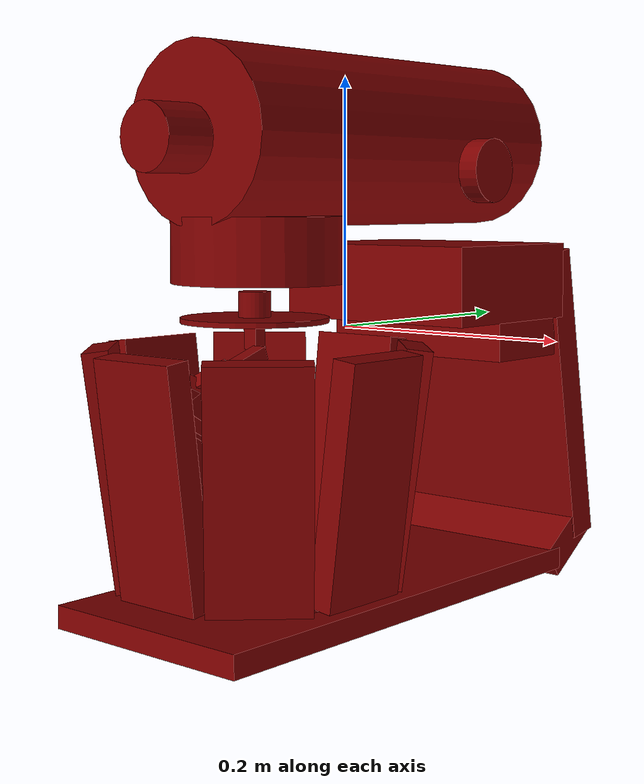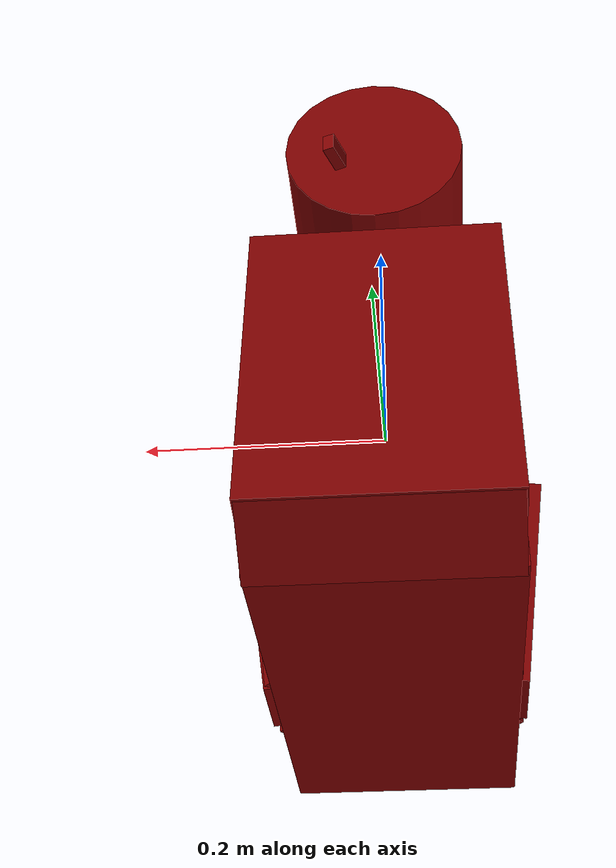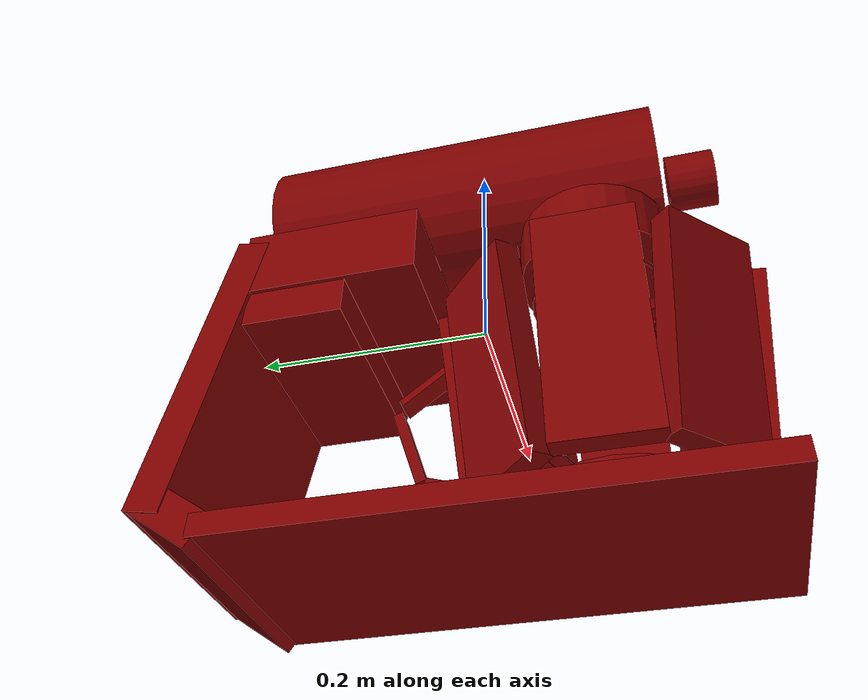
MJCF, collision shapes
<?xml version='1.0' encoding='UTF-8'?>
<mujoco model="model">
  <compiler angle="radian"/>
  <asset>
    <mesh file="visuals/Blender001.obj" name="Blender001_vis"/>
    <mesh file="visuals/Body001.obj" name="Body001_vis"/>
    <mesh file="visuals/Contanier001.obj" name="Contanier001_vis"/>
    <mesh file="visuals/Knob001.obj" name="Knob001_vis"/>
    <mesh file="visuals/Lever001.obj" name="Lever001_vis"/>
    <mesh file="visuals/Lid001.obj" name="Lid001_vis"/>
    <texture file="visuals/T_BC001.png" name="Body001_material" type="2d"/>
    <material name="Body001_material" rgba="1 1 1 1.0" texture="Body001_material" shininess="0.5438126623630524" specular="0.3103448502657381"/>
    <texture file="visuals/T_BC001.png" name="Contanier001_material" type="2d"/>
    <material name="Contanier001_material" rgba="1 1 1 1.0" texture="Contanier001_material" shininess="0.5438126623630524" specular="0.3103448502657381"/>
    <texture file="visuals/T_BC001.png" name="Lid001_material" type="2d"/>
    <material name="Lid001_material" rgba="1 1 1 1.0" texture="Lid001_material" shininess="0.5438126623630524" specular="0.3103448502657381"/>
    <texture file="visuals/T_BC001.png" name="Blender001_material" type="2d"/>
    <material name="Blender001_material" rgba="1 1 1 1.0" texture="Blender001_material" shininess="0.5438126623630524" specular="0.3103448502657381"/>
    <texture file="visuals/T_BC001.png" name="Knob001_material" type="2d"/>
    <material name="Knob001_material" rgba="1 1 1 1.0" texture="Knob001_material" shininess="0.5438126623630524" specular="0.3103448502657381"/>
    <texture file="visuals/T_BC001.png" name="Lever001_material" type="2d"/>
    <material name="Lever001_material" rgba="1 1 1 1.0" texture="Lever001_material" shininess="0.5438126623630524" specular="0.3103448502657381"/>
  </asset>
  <default>
    <default class="visual">
      <geom conaffinity="0" contype="0" group="1" type="mesh"/>
    </default>
    <default class="collision">
      <geom group="0" rgba="0.5 0 0 0.5"/>
    </default>
    <default class="spawn">
      <geom group="0" rgba="1 1 1 0.5" contype="0" conaffinity="0"/>
      <site group="0" rgba="1 1 1 0.5"/>
    </default>
    <default class="region">
      <geom group="1" conaffinity="0" contype="0" rgba="0 1 0 0"/>
    </default>
  </default>
  <worldbody>
    <body>
      <body name="object">
        <geom mesh="Body001_vis" type="mesh" solimp="0.998 0.998 0.001" solref="0.001 1" density="100" friction="0.95 0.3 0.1" class="visual" material="Body001_material"/>
        <geom class="collision" type="box" pos="-0.002943 -0.017992 -0.210796" size="0.09299628436565399 0.20198586583137512 0.009089131839573383" quat="1.0 0.0 0.0 0.0"/>
        <geom class="collision" type="box" pos="-0.002555 0.201024 -0.068752" size="0.0926085039973259 0.014161109924316406 0.12825751304626465" quat="0.9964488744735718 0.08419966697692871 -1.869608509743379e-17 -1.5005967532832152e-24"/>
        <geom class="collision" type="box" pos="-0.002397 0.109999 0.033113" size="0.09245053678750992 0.07399482280015945 0.03192950040102005" quat="1.0 0.0 0.0 0.0"/>
        <geom class="collision" type="box" pos="-0.002555 0.202044 -0.197711" size="0.0914422869682312 0.01416111085563898 0.031224068254232407" quat="0.8828450441360474 -0.4696643650531769 -1.3570199704419878e-16 2.027896302836424e-17"/>
        <geom class="collision" type="box" pos="-0.002555 0.136155 -0.014812" size="0.08866823464632034 0.016375288367271423 0.04129499942064285" quat="0.7071067094802856 0.7071068286895752 2.702663593570636e-17 1.8036265622112902e-16"/>
        <body name="Contanier001">
          <joint axis="0.0 0.0 1.0" pos="0.000000 -0.080116 -0.103911" limited="true" name="Contanier001_joint" range="0.0 0.05" type="slide" damping="1" frictionloss="1" armature=".01" stiffness="0.05"/>
          <geom mesh="Contanier001_vis" type="mesh" solimp="0.998 0.998 0.001" solref="0.001 1" density="100" friction="0.95 0.3 0.1" class="visual" material="Contanier001_material"/>
          <geom class="collision" type="box" pos="0.000004 0.009828 -0.098375" size="0.03837154060602188 0.009942335076630116 0.09084977209568024" quat="0.9979614615440369 -0.06381987035274506 0.0 0.0"/>
          <geom class="collision" type="box" pos="0.000004 -0.209197 -0.098921" size="0.03837154060602188 0.009942335076630116 0.09084977209568024" quat="1.943102603263469e-07 -1.2426191631220718e-08 -0.9979614615440369 -0.06381989270448685"/>
          <geom class="collision" type="box" pos="-0.107747 -0.100689 -0.098824" size="0.03837154060602188 0.009942334145307541 0.09084976464509964" quat="0.04512753337621689 0.7056650519371033 0.7056655883789062 0.04512733966112137"/>
          <geom class="collision" type="box" pos="0.106474 -0.100689 -0.098659" size="0.03837154060602188 0.009942335076630116 0.09084977209568024" quat="0.7056653499603271 -0.04512745514512062 0.04512745514512062 -0.7056652307510376"/>
          <geom class="collision" type="box" pos="0.074206 -0.178602 -0.098804" size="0.03837154060602188 0.009942334145307541 0.09084977209568024" quat="0.3706315755844116 -0.023701976984739304 0.05925530940294266 -0.9265847206115723"/>
          <geom class="collision" type="box" pos="-0.073898 -0.023092 -0.098748" size="0.03837154060602188 0.009942334145307541 0.09084976464509964" quat="0.059255219995975494 0.926584780216217 0.3706314265727997 0.0237021055072546"/>
          <geom class="collision" type="box" pos="0.077917 -0.026488 -0.098804" size="0.03837154060602188 0.009942333213984966 0.09084976464509964" quat="0.058659687638282776 0.9172704219818115 -0.39311835169792175 -0.02513984777033329"/>
          <geom class="collision" type="box" pos="-0.078416 -0.175374 -0.098894" size="0.03837154060602188 0.009942333213984966 0.09084977209568024" quat="0.39311814308166504 -0.02513999119400978 -0.058659665286540985 0.9172704815864563"/>
          <geom class="collision" type="cylinder" pos="0.000004 -0.100943 -0.191818" size="0.07816345244646072 0.005113876890391111" quat="1.0 0.0 0.0 0.0"/>
          <geom class="collision" type="box" pos="-0.001167 0.059543 -0.112412" size="0.009522397071123123 0.003930070903152227 0.034882139414548874" quat="0.9874767065048218 -0.15776482224464417 3.5030827626379805e-17 4.60439887690594e-24"/>
          <geom class="collision" type="box" pos="-0.001167 0.048647 -0.054078" size="0.009522397071123123 0.0031111417338252068 0.02426467090845108" quat="0.8980101346969604 0.4399747848510742 -9.769405374901203e-17 2.2198020491556395e-23"/>
          <geom class="collision" type="box" pos="-0.001167 0.023919 -0.152844" size="0.009522397071123123 0.0036734919995069504 0.022242942824959755" quat="1.5712855372385093e-07 -8.69119531898832e-08 -0.5904467105865479 -0.807076632976532"/>
        </body>
        <body name="Lid001">
          <joint axis="-1.0 0.0 0.0" pos="0.000004 0.172385 0.073544" limited="true" name="Lid001_joint" range="0.0 1.5707963267948966" type="hinge" damping="1" frictionloss="1" armature=".01" stiffness="0.05"/>
          <geom mesh="Lid001_vis" type="mesh" solimp="0.998 0.998 0.001" solref="0.001 1" density="100" friction="0.95 0.3 0.1" class="visual" material="Lid001_material"/>
          <geom class="collision" type="cylinder" pos="0.000004 -0.193128 0.146298" size="0.025266218930482864 0.021115923300385475" quat="0.7071067094802856 -0.70710688829422 0.0 0.0"/>
          <geom class="collision" type="cylinder" pos="0.000004 -0.100290 0.064805" size="0.06663016229867935 0.025263486430048943" quat="1.0 -5.960464477539063e-08 0.0 0.0"/>
          <geom class="collision" type="cylinder" pos="-0.002690 0.010272 0.150069" size="0.0685434490442276 0.17514696717262268" quat="0.7071067094802856 -0.70710688829422 0.0 0.0"/>
          <body name="Blender001">
            <joint axis="0.0 0.0 1.0" pos="-0.005117 -0.099959 0.035286" limited="false" name="Blender001_joint" range="0 360" type="hinge" damping="1" frictionloss="1" armature=".01" stiffness="0.05"/>
            <geom mesh="Blender001_vis" type="mesh" solimp="0.998 0.998 0.001" solref="0.001 1" density="100" friction="0.95 0.3 0.1" class="visual" material="Blender001_material"/>
            <geom class="collision" type="cylinder" pos="-0.004896 -0.100039 0.022623" size="0.012292686849832535 0.010325752198696136" quat="1.0 -5.960464477539063e-08 0.0 0.0"/>
            <geom class="collision" type="cylinder" pos="-0.004896 -0.100039 0.011371" size="0.056904375553131104 0.0020433019381016493" quat="1.0 -5.960464477539063e-08 0.0 0.0"/>
            <geom class="collision" type="box" pos="-0.004519 -0.100647 0.000950" size="0.006084819789975882 0.005328639410436153 0.012103812769055367" quat="1.0 0.0 0.0 0.0"/>
            <geom class="collision" type="box" pos="0.005812 -0.119838 -0.017950" size="0.006084819789975882 0.005328639876097441 0.01583249121904373" quat="0.8145590424537659 -0.5800806283950806 -1.2880377395664956e-16 6.657786852686771e-25"/>
            <geom class="collision" type="box" pos="0.005823 -0.090038 -0.149963" size="0.005237325094640255 0.005328640341758728 0.019699113443493843" quat="0.7551144957542419 -0.5745607018470764 0.2701469361782074 -0.16340966522693634"/>
            <geom class="collision" type="box" pos="-0.071984 -0.098887 -0.078462" size="0.006084819789975882 0.005328639410436153 0.024810034781694412" quat="0.49731895327568054 -0.867567777633667 -1.926387179605754e-16 -2.2768423724016362e-23"/>
            <geom class="collision" type="box" pos="-0.033679 -0.049134 -0.116589" size="0.006084820255637169 0.005328639410436153 0.024810031056404114" quat="0.4078522324562073 -0.7114940881729126 0.49643728137016296 -0.28457459807395935"/>
            <geom class="collision" type="box" pos="0.003126 -0.058626 -0.136204" size="0.0051918732933700085 0.004717028234153986 0.024810034781694412" quat="0.14561611413955688 -0.5117025375366211 0.6257711052894592 -0.5704094767570496"/>
            <geom class="collision" type="box" pos="-0.034642 -0.148065 -0.044058" size="0.006084819789975882 0.005328639410436153 0.024810034781694412" quat="0.3302362859249115 -0.786643922328949 -0.3130199611186981 0.4173174202442169"/>
            <geom class="collision" type="box" pos="-0.060763 -0.064660 -0.096628" size="0.006084820721298456 0.005328640807420015 0.013813997618854046" quat="0.47956910729408264 -0.836603581905365 0.13167962431907654 -0.22971364855766296"/>
            <geom class="collision" type="box" pos="-0.065061 -0.130637 -0.059868" size="0.006084820255637169 0.005328640807420015 0.013813999481499195" quat="0.4896605312824249 -0.8542078137397766 -0.08694063872098923 0.1516670137643814"/>
            <geom class="collision" type="box" pos="-0.005126 -0.142991 -0.028382" size="0.006084820721298456 0.005328640807420015 0.013813999481499195" quat="0.642673909664154 0.1144571602344513 0.49150794744491577 0.5764457583427429"/>
          </body>
          <body name="Knob001">
            <joint axis="-1.0 0.0 0.0" pos="0.092930 0.065347 0.125269" limited="true" name="Knob001_joint" range="0.0 4.852015320544236" type="hinge" damping="0.05" armature="0.001"/>
            <geom mesh="Knob001_vis" type="mesh" solimp="0.998 0.998 0.001" solref="0.001 1" density="100" friction="0.95 0.3 0.1" class="visual" material="Knob001_material"/>
            <geom class="collision" type="cylinder" pos="0.091835 0.064986 0.125382" size="0.02532673254609108 0.008402258157730103" quat="0.4999975264072418 -0.5000000596046448 0.5000023245811462 -0.5000000596046448"/>
          </body>
          <body name="Lever001">
            <joint axis="0.0 0.0 1.0" pos="-0.002407 0.112792 0.136384" limited="true" name="Lever001_joint" range="0.0 0.7330382858376184" type="hinge" damping="1" frictionloss="1" armature=".01" stiffness="0.05"/>
            <geom mesh="Lever001_vis" type="mesh" solimp="0.998 0.998 0.001" solref="0.001 1" density="100" friction="0.95 0.3 0.1" class="visual" material="Lever001_material"/>
            <geom class="collision" type="box" pos="0.026459 0.200817 0.133534" size="0.004393617156893015 0.011648655869066715 0.007082652300596237" quat="0.9853608012199402 0.0 0.0 -0.17048195004463196"/>
          </body>
        </body>
        <geom class="region" name="reg_main" type="box" pos="0.0 0.0 0.0001810000000000006" size="0.128724 0.2299 0.219704"/>
      </body>
    </body>
  </worldbody>
  <actuator>
    <motor name="Contanier001_joint_actuator" joint="Contanier001_joint" gear="50"/>
    <motor name="Lid001_joint_actuator" joint="Lid001_joint" gear="50"/>
    <motor name="Blender001_joint_actuator" joint="Blender001_joint" gear="20"/>
    <motor name="Knob001_joint_actuator" joint="Knob001_joint" gear="10"/>
    <motor name="Lever001_joint_actuator" joint="Lever001_joint" gear="10"/>
  </actuator>
</mujoco>
